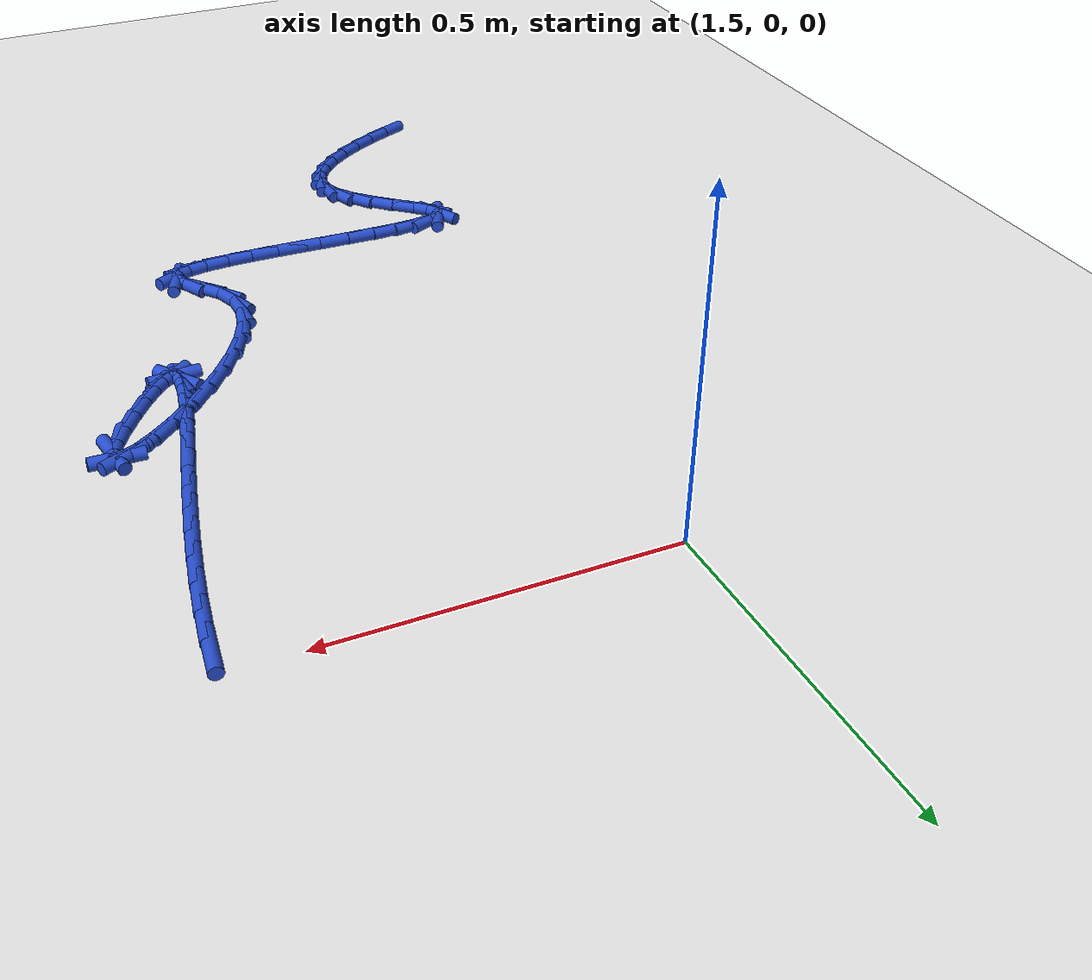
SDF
<sdf version="1.6">
 <world name="default">
  <model name="ground_plane">
   <static>1</static>
   <link name="link">
    <collision name="collision">
     <geometry><plane><normal>0 0 1</normal><size>100 100</size></plane></geometry>
     <surface><friction><ode><mu>100</mu><mu2>50</mu2></ode></friction></surface>
    </collision>
    <visual name="visual">
     <cast_shadows>0</cast_shadows>
     <geometry><plane><normal>0 0 1</normal><size>100 100</size></plane></geometry>
     <material>
      <script><uri>file://media/materials/scripts/gazebo.material</uri><name>Gazebo/WhiteGlow</name></script>
     </material>
    </visual>
   </link>
  </model>
  <model name="line">
   <link name="link_140">
    <pose>2.101556931160824 -0.03415369029280646 0.01 0 1.57 1.4442022148812341</pose>
    <collision name="collision">
     <geometry><cylinder><radius>0.01</radius><length>0.08</length></cylinder></geometry>
    </collision>
    <visual name="visual">
     <material>
      <script><name>Gazebo/Blue</name><uri>file://media/materials/scripts/gazebo.material</uri></script>
     </material>
     <geometry><cylinder><radius>0.01</radius><length>0.08</length></cylinder></geometry>
    </visual>
   </link>
   <link name="link_141">
    <pose>2.0950436342008474 -0.08532878405042327 0.01 0 1.57 1.413891093103514</pose>
    <collision name="collision">
     <geometry><cylinder><radius>0.01</radius><length>0.08</length></cylinder></geometry>
    </collision>
    <visual name="visual">
     <material>
      <script><name>Gazebo/Blue</name><uri>file://media/materials/scripts/gazebo.material</uri></script>
     </material>
     <geometry><cylinder><radius>0.01</radius><length>0.08</length></cylinder></geometry>
    </visual>
   </link>
   <link name="link_142">
    <pose>2.086908642193002 -0.1367491404618664 0.01 0 1.57 1.388809079891125</pose>
    <collision name="collision">
     <geometry><cylinder><radius>0.01</radius><length>0.08</length></cylinder></geometry>
    </collision>
    <visual name="visual">
     <material>
      <script><name>Gazebo/Blue</name><uri>file://media/materials/scripts/gazebo.material</uri></script>
     </material>
     <geometry><cylinder><radius>0.01</radius><length>0.08</length></cylinder></geometry>
    </visual>
   </link>
   <link name="link_143">
    <pose>2.077486708128805 -0.1879488134985408 0.01 0 1.57 1.3682377512382455</pose>
    <collision name="collision">
     <geometry><cylinder><radius>0.01</radius><length>0.08</length></cylinder></geometry>
    </collision>
    <visual name="visual">
     <material>
      <script><name>Gazebo/Blue</name><uri>file://media/materials/scripts/gazebo.material</uri></script>
     </material>
     <geometry><cylinder><radius>0.01</radius><length>0.08</length></cylinder></geometry>
    </visual>
   </link>
   <link name="link_144">
    <pose>2.067112584999769 -0.23846185713185147 0.01 0 1.57 1.3516917642343282</pose>
    <collision name="collision">
     <geometry><cylinder><radius>0.01</radius><length>0.08</length></cylinder></geometry>
    </collision>
    <visual name="visual">
     <material>
      <script><name>Gazebo/Blue</name><uri>file://media/materials/scripts/gazebo.material</uri></script>
     </material>
     <geometry><cylinder><radius>0.01</radius><length>0.08</length></cylinder></geometry>
    </visual>
   </link>
   <link name="link_145">
    <pose>2.0561210257974105 -0.2878223253332034 0.01 0 1.57 1.338895196707275</pose>
    <collision name="collision">
     <geometry><cylinder><radius>0.01</radius><length>0.08</length></cylinder></geometry>
    </collision>
    <visual name="visual">
     <material>
      <script><name>Gazebo/Blue</name><uri>file://media/materials/scripts/gazebo.material</uri></script>
     </material>
     <geometry><cylinder><radius>0.01</radius><length>0.08</length></cylinder></geometry>
    </visual>
   </link>
   <link name="link_146">
    <pose>2.0448467835132433 -0.33556427207400286 0.01 0 1.57 1.3297835003313692</pose>
    <collision name="collision">
     <geometry><cylinder><radius>0.01</radius><length>0.08</length></cylinder></geometry>
    </collision>
    <visual name="visual">
     <material>
      <script><name>Gazebo/Blue</name><uri>file://media/materials/scripts/gazebo.material</uri></script>
     </material>
     <geometry><cylinder><radius>0.01</radius><length>0.08</length></cylinder></geometry>
    </visual>
   </link>
   <link name="link_147">
    <pose>2.0336246111387832 -0.38122175132565195 0.01 0 1.57 1.3245390026820258</pose>
    <collision name="collision">
     <geometry><cylinder><radius>0.01</radius><length>0.08</length></cylinder></geometry>
    </collision>
    <visual name="visual">
     <material>
      <script><name>Gazebo/Blue</name><uri>file://media/materials/scripts/gazebo.material</uri></script>
     </material>
     <geometry><cylinder><radius>0.01</radius><length>0.08</length></cylinder></geometry>
    </visual>
   </link>
   <link name="link_148">
    <pose>2.0227892616655443 -0.4243288170595569 0.01 0 1.57 1.3236801997399832</pose>
    <collision name="collision">
     <geometry><cylinder><radius>0.01</radius><length>0.08</length></cylinder></geometry>
    </collision>
    <visual name="visual">
     <material>
      <script><name>Gazebo/Blue</name><uri>file://media/materials/scripts/gazebo.material</uri></script>
     </material>
     <geometry><cylinder><radius>0.01</radius><length>0.08</length></cylinder></geometry>
    </visual>
   </link>
   <link name="link_149">
    <pose>2.0126754880850424 -0.4644195232471228 0.01 0 1.57 1.328252666108784</pose>
    <collision name="collision">
     <geometry><cylinder><radius>0.01</radius><length>0.08</length></cylinder></geometry>
    </collision>
    <visual name="visual">
     <material>
      <script><name>Gazebo/Blue</name><uri>file://media/materials/scripts/gazebo.material</uri></script>
     </material>
     <geometry><cylinder><radius>0.01</radius><length>0.08</length></cylinder></geometry>
    </visual>
   </link>
   <link name="link_150">
    <pose>2.003618043388792 -0.5010279238597548 0.01 0 1.57 1.3402389152158736</pose>
    <collision name="collision">
     <geometry><cylinder><radius>0.01</radius><length>0.08</length></cylinder></geometry>
    </collision>
    <visual name="visual">
     <material>
      <script><name>Gazebo/Blue</name><uri>file://media/materials/scripts/gazebo.material</uri></script>
     </material>
     <geometry><cylinder><radius>0.01</radius><length>0.08</length></cylinder></geometry>
    </visual>
   </link>
   <link name="link_151">
    <pose>1.9959516805683075 -0.5336880728688574 0.01 0 1.57 1.3635031111590354</pose>
    <collision name="collision">
     <geometry><cylinder><radius>0.01</radius><length>0.08</length></cylinder></geometry>
    </collision>
    <visual name="visual">
     <material>
      <script><name>Gazebo/Blue</name><uri>file://media/materials/scripts/gazebo.material</uri></script>
     </material>
     <geometry><cylinder><radius>0.01</radius><length>0.08</length></cylinder></geometry>
    </visual>
   </link>
   <link name="link_152">
    <pose>1.9900111526151043 -0.5619340242458359 0.01 0 1.57 1.4062457216849507</pose>
    <collision name="collision">
     <geometry><cylinder><radius>0.01</radius><length>0.08</length></cylinder></geometry>
    </collision>
    <visual name="visual">
     <material>
      <script><name>Gazebo/Blue</name><uri>file://media/materials/scripts/gazebo.material</uri></script>
     </material>
     <geometry><cylinder><radius>0.01</radius><length>0.08</length></cylinder></geometry>
    </visual>
   </link>
   <link name="link_153">
    <pose>1.9861312125206974 -0.5852998319620952 0.01 0 1.57 1.4885944936559077</pose>
    <collision name="collision">
     <geometry><cylinder><radius>0.01</radius><length>0.08</length></cylinder></geometry>
    </collision>
    <visual name="visual">
     <material>
      <script><name>Gazebo/Blue</name><uri>file://media/materials/scripts/gazebo.material</uri></script>
     </material>
     <geometry><cylinder><radius>0.01</radius><length>0.08</length></cylinder></geometry>
    </visual>
   </link>
   <link name="link_154">
    <pose>1.9846466132766016 -0.6033195499890401 0.01 0 1.57 -1.4691226573566265</pose>
    <collision name="collision">
     <geometry><cylinder><radius>0.01</radius><length>0.08</length></cylinder></geometry>
    </collision>
    <visual name="visual">
     <material>
      <script><name>Gazebo/Blue</name><uri>file://media/materials/scripts/gazebo.material</uri></script>
     </material>
     <geometry><cylinder><radius>0.01</radius><length>0.08</length></cylinder></geometry>
    </visual>
   </link>
   <link name="link_155">
    <pose>1.9858921078743315 -0.615527232298076 0.01 0 1.57 -0.9422392229340247</pose>
    <collision name="collision">
     <geometry><cylinder><radius>0.01</radius><length>0.08</length></cylinder></geometry>
    </collision>
    <visual name="visual">
     <material>
      <script><name>Gazebo/Blue</name><uri>file://media/materials/scripts/gazebo.material</uri></script>
     </material>
     <geometry><cylinder><radius>0.01</radius><length>0.08</length></cylinder></geometry>
    </visual>
   </link>
   <link name="link_156">
    <pose>1.990202449305403 -0.6214569328606071 0.01 0 1.57 0.10521744258739686</pose>
    <collision name="collision">
     <geometry><cylinder><radius>0.01</radius><length>0.08</length></cylinder></geometry>
    </collision>
    <visual name="visual">
     <material>
      <script><name>Gazebo/Blue</name><uri>file://media/materials/scripts/gazebo.material</uri></script>
     </material>
     <geometry><cylinder><radius>0.01</radius><length>0.08</length></cylinder></geometry>
    </visual>
   </link>
   <link name="link_157">
    <pose>1.9979123905613294 -0.6206427056480386 0.01 0 1.57 0.6114935065382964</pose>
    <collision name="collision">
     <geometry><cylinder><radius>0.01</radius><length>0.08</length></cylinder></geometry>
    </collision>
    <visual name="visual">
     <material>
      <script><name>Gazebo/Blue</name><uri>file://media/materials/scripts/gazebo.material</uri></script>
     </material>
     <geometry><cylinder><radius>0.01</radius><length>0.08</length></cylinder></geometry>
    </visual>
   </link>
   <link name="link_158">
    <pose>2.009356684633626 -0.6126186046317753 0.01 0 1.57 0.7913737771391216</pose>
    <collision name="collision">
     <geometry><cylinder><radius>0.01</radius><length>0.08</length></cylinder></geometry>
    </collision>
    <visual name="visual">
     <material>
      <script><name>Gazebo/Blue</name><uri>file://media/materials/scripts/gazebo.material</uri></script>
     </material>
     <geometry><cylinder><radius>0.01</radius><length>0.08</length></cylinder></geometry>
    </visual>
   </link>
   <link name="link_159">
    <pose>2.0248700845138092 -0.5969186837832227 0.01 0 1.57 0.8747386738789843</pose>
    <collision name="collision">
     <geometry><cylinder><radius>0.01</radius><length>0.08</length></cylinder></geometry>
    </collision>
    <visual name="visual">
     <material>
      <script><name>Gazebo/Blue</name><uri>file://media/materials/scripts/gazebo.material</uri></script>
     </material>
     <geometry><cylinder><radius>0.01</radius><length>0.08</length></cylinder></geometry>
    </visual>
   </link>
   <link name="link_160">
    <pose>2.044685511510344 -0.5732038619779458 0.01 0 1.57 0.9236229548124099</pose>
    <collision name="collision">
     <geometry><cylinder><radius>0.01</radius><length>0.08</length></cylinder></geometry>
    </collision>
    <visual name="visual">
     <material>
      <script><name>Gazebo/Blue</name><uri>file://media/materials/scripts/gazebo.material</uri></script>
     </material>
     <geometry><cylinder><radius>0.01</radius><length>0.08</length></cylinder></geometry>
    </visual>
   </link>
   <link name="link_161">
    <pose>2.067081455207502 -0.5435699465855052 0.01 0 1.57 0.9684983171767285</pose>
    <collision name="collision">
     <geometry><cylinder><radius>0.01</radius><length>0.08</length></cylinder></geometry>
    </collision>
    <visual name="visual">
     <material>
      <script><name>Gazebo/Blue</name><uri>file://media/materials/scripts/gazebo.material</uri></script>
     </material>
     <geometry><cylinder><radius>0.01</radius><length>0.08</length></cylinder></geometry>
    </visual>
   </link>
   <link name="link_162">
    <pose>2.088575802474757 -0.5123061555917964 0.01 0 1.57 1.0321294461101762</pose>
    <collision name="collision">
     <geometry><cylinder><radius>0.01</radius><length>0.08</length></cylinder></geometry>
    </collision>
    <visual name="visual">
     <material>
      <script><name>Gazebo/Blue</name><uri>file://media/materials/scripts/gazebo.material</uri></script>
     </material>
     <geometry><cylinder><radius>0.01</radius><length>0.08</length></cylinder></geometry>
    </visual>
   </link>
   <link name="link_163">
    <pose>2.105623506910559 -0.48378011110172897 0.01 0 1.57 1.1708161806827466</pose>
    <collision name="collision">
     <geometry><cylinder><radius>0.01</radius><length>0.08</length></cylinder></geometry>
    </collision>
    <visual name="visual">
     <material>
      <script><name>Gazebo/Blue</name><uri>file://media/materials/scripts/gazebo.material</uri></script>
     </material>
     <geometry><cylinder><radius>0.01</radius><length>0.08</length></cylinder></geometry>
    </visual>
   </link>
   <link name="link_164">
    <pose>2.1146795221133567 -0.46235943522021195 0.01 0 1.57 -1.4182391712859814</pose>
    <collision name="collision">
     <geometry><cylinder><radius>0.01</radius><length>0.08</length></cylinder></geometry>
    </collision>
    <visual name="visual">
     <material>
      <script><name>Gazebo/Blue</name><uri>file://media/materials/scripts/gazebo.material</uri></script>
     </material>
     <geometry><cylinder><radius>0.01</radius><length>0.08</length></cylinder></geometry>
    </visual>
   </link>
   <link name="link_165">
    <pose>2.1130197199757275 -0.4515641005953644 0.01 0 1.57 -0.029694432622559722</pose>
    <collision name="collision">
     <geometry><cylinder><radius>0.01</radius><length>0.08</length></cylinder></geometry>
    </collision>
    <visual name="visual">
     <material>
      <script><name>Gazebo/Blue</name><uri>file://media/materials/scripts/gazebo.material</uri></script>
     </material>
     <geometry><cylinder><radius>0.01</radius><length>0.08</length></cylinder></geometry>
    </visual>
   </link>
   <link name="link_166">
    <pose>2.1014958099937258 -0.45122180401320594 0.01 0 1.57 0.42836812363266424</pose>
    <collision name="collision">
     <geometry><cylinder><radius>0.01</radius><length>0.08</length></cylinder></geometry>
    </collision>
    <visual name="visual">
     <material>
      <script><name>Gazebo/Blue</name><uri>file://media/materials/scripts/gazebo.material</uri></script>
     </material>
     <geometry><cylinder><radius>0.01</radius><length>0.08</length></cylinder></geometry>
    </visual>
   </link>
   <link name="link_167">
    <pose>2.0819328859872517 -0.46015516209616614 0.01 0 1.57 0.5838836967400234</pose>
    <collision name="collision">
     <geometry><cylinder><radius>0.01</radius><length>0.08</length></cylinder></geometry>
    </collision>
    <visual name="visual">
     <material>
      <script><name>Gazebo/Blue</name><uri>file://media/materials/scripts/gazebo.material</uri></script>
     </material>
     <geometry><cylinder><radius>0.01</radius><length>0.08</length></cylinder></geometry>
    </visual>
   </link>
   <link name="link_168">
    <pose>2.0561560622757282 -0.4771867702996357 0.01 0 1.57 0.6710912045367439</pose>
    <collision name="collision">
     <geometry><cylinder><radius>0.01</radius><length>0.08</length></cylinder></geometry>
    </collision>
    <visual name="visual">
     <material>
      <script><name>Gazebo/Blue</name><uri>file://media/materials/scripts/gazebo.material</uri></script>
     </material>
     <geometry><cylinder><radius>0.01</radius><length>0.08</length></cylinder></geometry>
    </visual>
   </link>
   <link name="link_169">
    <pose>2.0259904531785766 -0.5011392240790049 0.01 0 1.57 0.7368440145548399</pose>
    <collision name="collision">
     <geometry><cylinder><radius>0.01</radius><length>0.08</length></cylinder></geometry>
    </collision>
    <visual name="visual">
     <material>
      <script><name>Gazebo/Blue</name><uri>file://media/materials/scripts/gazebo.material</uri></script>
     </material>
     <geometry><cylinder><radius>0.01</radius><length>0.08</length></cylinder></geometry>
    </visual>
   </link>
   <link name="link_170">
    <pose>1.9932611730152208 -0.5308351188896644 0.01 0 1.57 0.7971220777866695</pose>
    <collision name="collision">
     <geometry><cylinder><radius>0.01</radius><length>0.08</length></cylinder></geometry>
    </collision>
    <visual name="visual">
     <material>
      <script><name>Gazebo/Blue</name><uri>file://media/materials/scripts/gazebo.material</uri></script>
     </material>
     <geometry><cylinder><radius>0.01</radius><length>0.08</length></cylinder></geometry>
    </visual>
   </link>
   <link name="link_171">
    <pose>1.959793336105083 -0.5650970501870043 0.01 0 1.57 0.8604979148240864</pose>
    <collision name="collision">
     <geometry><cylinder><radius>0.01</radius><length>0.08</length></cylinder></geometry>
    </collision>
    <visual name="visual">
     <material>
      <script><name>Gazebo/Blue</name><uri>file://media/materials/scripts/gazebo.material</uri></script>
     </material>
     <geometry><cylinder><radius>0.01</radius><length>0.08</length></cylinder></geometry>
    </visual>
   </link>
   <link name="link_172">
    <pose>1.9274120567675865 -0.6027476134264156 0.01 0 1.57 0.9341819395168988</pose>
    <collision name="collision">
     <geometry><cylinder><radius>0.01</radius><length>0.08</length></cylinder></geometry>
    </collision>
    <visual name="visual">
     <material>
      <script><name>Gazebo/Blue</name><uri>file://media/materials/scripts/gazebo.material</uri></script>
     </material>
     <geometry><cylinder><radius>0.01</radius><length>0.08</length></cylinder></geometry>
    </visual>
   </link>
   <link name="link_173">
    <pose>1.8979424493221528 -0.6426094040632896 0.01 0 1.57 1.026870030704418</pose>
    <collision name="collision">
     <geometry><cylinder><radius>0.01</radius><length>0.08</length></cylinder></geometry>
    </collision>
    <visual name="visual">
     <material>
      <script><name>Gazebo/Blue</name><uri>file://media/materials/scripts/gazebo.material</uri></script>
     </material>
     <geometry><cylinder><radius>0.01</radius><length>0.08</length></cylinder></geometry>
    </visual>
   </link>
   <link name="link_174">
    <pose>1.8732096280882065 -0.6835050175530144 0.01 0 1.57 1.1513655880613785</pose>
    <collision name="collision">
     <geometry><cylinder><radius>0.01</radius><length>0.08</length></cylinder></geometry>
    </collision>
    <visual name="visual">
     <material>
      <script><name>Gazebo/Blue</name><uri>file://media/materials/scripts/gazebo.material</uri></script>
     </material>
     <geometry><cylinder><radius>0.01</radius><length>0.08</length></cylinder></geometry>
    </visual>
   </link>
   <link name="link_175">
    <pose>1.855038707385169 -0.7242570493509819 0.01 0 1.57 1.3275812910118894</pose>
    <collision name="collision">
     <geometry><cylinder><radius>0.01</radius><length>0.08</length></cylinder></geometry>
    </collision>
    <visual name="visual">
     <material>
      <script><name>Gazebo/Blue</name><uri>file://media/materials/scripts/gazebo.material</uri></script>
     </material>
     <geometry><cylinder><radius>0.01</radius><length>0.08</length></cylinder></geometry>
    </visual>
   </link>
   <link name="link_176">
    <pose>1.8452548015324641 -0.7636880949125824 0.01 0 1.57 -1.5592021391736457</pose>
    <collision name="collision">
     <geometry><cylinder><radius>0.01</radius><length>0.08</length></cylinder></geometry>
    </collision>
    <visual name="visual">
     <material>
      <script><name>Gazebo/Blue</name><uri>file://media/materials/scripts/gazebo.material</uri></script>
     </material>
     <geometry><cylinder><radius>0.01</radius><length>0.08</length></cylinder></geometry>
    </visual>
   </link>
   <link name="link_177">
    <pose>1.8456830248495133 -0.8006207496932062 0.01 0 1.57 -1.2132381891023087</pose>
    <collision name="collision">
     <geometry><cylinder><radius>0.01</radius><length>0.08</length></cylinder></geometry>
    </collision>
    <visual name="visual">
     <material>
      <script><name>Gazebo/Blue</name><uri>file://media/materials/scripts/gazebo.material</uri></script>
     </material>
     <geometry><cylinder><radius>0.01</radius><length>0.08</length></cylinder></geometry>
    </visual>
   </link>
   <link name="link_178">
    <pose>1.8581093558710622 -0.8338802417222463 0.01 0 1.57 -0.9167328392878697</pose>
    <collision name="collision">
     <geometry><cylinder><radius>0.01</radius><length>0.08</length></cylinder></geometry>
    </collision>
    <visual name="visual">
     <material>
      <script><name>Gazebo/Blue</name><uri>file://media/materials/scripts/gazebo.material</uri></script>
     </material>
     <geometry><cylinder><radius>0.01</radius><length>0.08</length></cylinder></geometry>
    </visual>
   </link>
   <link name="link_179">
    <pose>1.8801078882656699 -0.862575122812988 0.01 0 1.57 -0.8417540047842131</pose>
    <collision name="collision">
     <geometry><cylinder><radius>0.01</radius><length>0.08</length></cylinder></geometry>
    </collision>
    <visual name="visual">
     <material>
      <script><name>Gazebo/Blue</name><uri>file://media/materials/scripts/gazebo.material</uri></script>
     </material>
     <geometry><cylinder><radius>0.01</radius><length>0.08</length></cylinder></geometry>
    </visual>
   </link>
   <link name="link_180">
    <pose>1.9013400880200824 -0.886346208999263 0.01 0 1.57 -1.090118114595109</pose>
    <collision name="collision">
     <geometry><cylinder><radius>0.01</radius><length>0.08</length></cylinder></geometry>
    </collision>
    <visual name="visual">
     <material>
      <script><name>Gazebo/Blue</name><uri>file://media/materials/scripts/gazebo.material</uri></script>
     </material>
     <geometry><cylinder><radius>0.01</radius><length>0.08</length></cylinder></geometry>
    </visual>
   </link>
   <link name="link_181">
    <pose>1.911028495459515 -0.9049251269537478 0.01 0 1.57 1.1834637412208244</pose>
    <collision name="collision">
     <geometry><cylinder><radius>0.01</radius><length>0.08</length></cylinder></geometry>
    </collision>
    <visual name="visual">
     <material>
      <script><name>Gazebo/Blue</name><uri>file://media/materials/scripts/gazebo.material</uri></script>
     </material>
     <geometry><cylinder><radius>0.01</radius><length>0.08</length></cylinder></geometry>
    </visual>
   </link>
   <link name="link_182">
    <pose>1.90546371949836 -0.9185662828946725 0.01 0 1.57 0.46343478395984355</pose>
    <collision name="collision">
     <geometry><cylinder><radius>0.01</radius><length>0.08</length></cylinder></geometry>
    </collision>
    <visual name="visual">
     <material>
      <script><name>Gazebo/Blue</name><uri>file://media/materials/scripts/gazebo.material</uri></script>
     </material>
     <geometry><cylinder><radius>0.01</radius><length>0.08</length></cylinder></geometry>
    </visual>
   </link>
   <link name="link_183">
    <pose>1.886687397034868 -0.9279494495683297 0.01 0 1.57 0.19291822989512564</pose>
    <collision name="collision">
     <geometry><cylinder><radius>0.01</radius><length>0.08</length></cylinder></geometry>
    </collision>
    <visual name="visual">
     <material>
      <script><name>Gazebo/Blue</name><uri>file://media/materials/scripts/gazebo.material</uri></script>
     </material>
     <geometry><cylinder><radius>0.01</radius><length>0.08</length></cylinder></geometry>
    </visual>
   </link>
   <link name="link_184">
    <pose>1.8569081752655112 -0.9337667523979428 0.01 0 1.57 0.07616297512590584</pose>
    <collision name="collision">
     <geometry><cylinder><radius>0.01</radius><length>0.08</length></cylinder></geometry>
    </collision>
    <visual name="visual">
     <material>
      <script><name>Gazebo/Blue</name><uri>file://media/materials/scripts/gazebo.material</uri></script>
     </material>
     <geometry><cylinder><radius>0.01</radius><length>0.08</length></cylinder></geometry>
    </visual>
   </link>
   <link name="link_185">
    <pose>1.8183347013867597 -0.9367103168067346 0.01 0 1.57 0.016871006640914493</pose>
    <collision name="collision">
     <geometry><cylinder><radius>0.01</radius><length>0.08</length></cylinder></geometry>
    </collision>
    <visual name="visual">
     <material>
      <script><name>Gazebo/Blue</name><uri>file://media/materials/scripts/gazebo.material</uri></script>
     </material>
     <geometry><cylinder><radius>0.01</radius><length>0.08</length></cylinder></geometry>
    </visual>
   </link>
   <link name="link_186">
    <pose>1.7731756225950843 -0.9374722682179281 0.01 0 1.57 -0.014685952074359713</pose>
    <collision name="collision">
     <geometry><cylinder><radius>0.01</radius><length>0.08</length></cylinder></geometry>
    </collision>
    <visual name="visual">
     <material>
      <script><name>Gazebo/Blue</name><uri>file://media/materials/scripts/gazebo.material</uri></script>
     </material>
     <geometry><cylinder><radius>0.01</radius><length>0.08</length></cylinder></geometry>
    </visual>
   </link>
   <link name="link_187">
    <pose>1.7236395860869551 -0.9367447320547458 0.01 0 1.57 -0.029484105405187373</pose>
    <collision name="collision">
     <geometry><cylinder><radius>0.01</radius><length>0.08</length></cylinder></geometry>
    </collision>
    <visual name="visual">
     <material>
      <script><name>Gazebo/Blue</name><uri>file://media/materials/scripts/gazebo.material</uri></script>
     </material>
     <geometry><cylinder><radius>0.01</radius><length>0.08</length></cylinder></geometry>
    </visual>
   </link>
   <link name="link_188">
    <pose>1.6719352390588436 -0.9352198337404114 0.01 0 1.57 -0.03154215834159134</pose>
    <collision name="collision">
     <geometry><cylinder><radius>0.01</radius><length>0.08</length></cylinder></geometry>
    </collision>
    <visual name="visual">
     <material>
      <script><name>Gazebo/Blue</name><uri>file://media/materials/scripts/gazebo.material</uri></script>
     </material>
     <geometry><cylinder><radius>0.01</radius><length>0.08</length></cylinder></geometry>
    </visual>
   </link>
   <link name="link_189">
    <pose>1.62027122870722 -0.9335896986981477 0.01 0 1.57 -0.02110878950089006</pose>
    <collision name="collision">
     <geometry><cylinder><radius>0.01</radius><length>0.08</length></cylinder></geometry>
    </collision>
    <visual name="visual">
     <material>
      <script><name>Gazebo/Blue</name><uri>file://media/materials/scripts/gazebo.material</uri></script>
     </material>
     <geometry><cylinder><radius>0.01</radius><length>0.08</length></cylinder></geometry>
    </visual>
   </link>
   <link name="link_190">
    <pose>1.570856202228554 -0.9325464523511774 0.01 0 1.57 0.005244200827530352</pose>
    <collision name="collision">
     <geometry><cylinder><radius>0.01</radius><length>0.08</length></cylinder></geometry>
    </collision>
    <visual name="visual">
     <material>
      <script><name>Gazebo/Blue</name><uri>file://media/materials/scripts/gazebo.material</uri></script>
     </material>
     <geometry><cylinder><radius>0.01</radius><length>0.08</length></cylinder></geometry>
    </visual>
   </link>
   <link name="link_191">
    <pose>1.5258988068193187 -0.9327822201227237 0.01 0 1.57 0.057571277866489134</pose>
    <collision name="collision">
     <geometry><cylinder><radius>0.01</radius><length>0.08</length></cylinder></geometry>
    </collision>
    <visual name="visual">
     <material>
      <script><name>Gazebo/Blue</name><uri>file://media/materials/scripts/gazebo.material</uri></script>
     </material>
     <geometry><cylinder><radius>0.01</radius><length>0.08</length></cylinder></geometry>
    </visual>
   </link>
   <link name="link_192">
    <pose>1.4876076896759836 -0.9349891274360094 0.01 0 1.57 0.1640726404879681</pose>
    <collision name="collision">
     <geometry><cylinder><radius>0.01</radius><length>0.08</length></cylinder></geometry>
    </collision>
    <visual name="visual">
     <material>
      <script><name>Gazebo/Blue</name><uri>file://media/materials/scripts/gazebo.material</uri></script>
     </material>
     <geometry><cylinder><radius>0.01</radius><length>0.08</length></cylinder></geometry>
    </visual>
   </link>
   <link name="link_193">
    <pose>1.4581914979950195 -0.9398592997142576 0.01 0 1.57 0.42175944714036107</pose>
    <collision name="collision">
     <geometry><cylinder><radius>0.01</radius><length>0.08</length></cylinder></geometry>
    </collision>
    <visual name="visual">
     <material>
      <script><name>Gazebo/Blue</name><uri>file://media/materials/scripts/gazebo.material</uri></script>
     </material>
     <geometry><cylinder><radius>0.01</radius><length>0.08</length></cylinder></geometry>
    </visual>
   </link>
   <link name="link_194">
    <pose>1.4398588789728968 -0.9480848623806916 0.01 0 1.57 1.1811107275054984</pose>
    <collision name="collision">
     <geometry><cylinder><radius>0.01</radius><length>0.08</length></cylinder></geometry>
    </collision>
    <visual name="visual">
     <material>
      <script><name>Gazebo/Blue</name><uri>file://media/materials/scripts/gazebo.material</uri></script>
     </material>
     <geometry><cylinder><radius>0.01</radius><length>0.08</length></cylinder></geometry>
    </visual>
   </link>
   <link name="link_195">
    <pose>1.4348184798060863 -0.9603579408585337 0.01 0 1.57 -1.0587466932552205</pose>
    <collision name="collision">
     <geometry><cylinder><radius>0.01</radius><length>0.08</length></cylinder></geometry>
    </collision>
    <visual name="visual">
     <material>
      <script><name>Gazebo/Blue</name><uri>file://media/materials/scripts/gazebo.material</uri></script>
     </material>
     <geometry><cylinder><radius>0.01</radius><length>0.08</length></cylinder></geometry>
    </visual>
   </link>
   <link name="link_196">
    <pose>1.4442469047367759 -0.9771329235905247 0.01 0 1.57 -0.7879963832541234</pose>
    <collision name="collision">
     <geometry><cylinder><radius>0.01</radius><length>0.08</length></cylinder></geometry>
    </collision>
    <visual name="visual">
     <material>
      <script><name>Gazebo/Blue</name><uri>file://media/materials/scripts/gazebo.material</uri></script>
     </material>
     <geometry><cylinder><radius>0.01</radius><length>0.08</length></cylinder></geometry>
    </visual>
   </link>
   <link name="link_197">
    <pose>1.4648383509442215 -0.9978316509883266 0.01 0 1.57 -0.7174978863243473</pose>
    <collision name="collision">
     <geometry><cylinder><radius>0.01</radius><length>0.08</length></cylinder></geometry>
    </collision>
    <visual name="visual">
     <material>
      <script><name>Gazebo/Blue</name><uri>file://media/materials/scripts/gazebo.material</uri></script>
     </material>
     <geometry><cylinder><radius>0.01</radius><length>0.08</length></cylinder></geometry>
    </visual>
   </link>
   <link name="link_198">
    <pose>1.4920703856708384 -1.0215957058189455 0.01 0 1.57 -0.7243904728843545</pose>
    <collision name="collision">
     <geometry><cylinder><radius>0.01</radius><length>0.08</length></cylinder></geometry>
    </collision>
    <visual name="visual">
     <material>
      <script><name>Gazebo/Blue</name><uri>file://media/materials/scripts/gazebo.material</uri></script>
     </material>
     <geometry><cylinder><radius>0.01</radius><length>0.08</length></cylinder></geometry>
    </visual>
   </link>
   <link name="link_199">
    <pose>1.5214205530060962 -1.0475666655159765 0.01 0 1.57 -0.7922827131437589</pose>
    <collision name="collision">
     <geometry><cylinder><radius>0.01</radius><length>0.08</length></cylinder></geometry>
    </collision>
    <visual name="visual">
     <material>
      <script><name>Gazebo/Blue</name><uri>file://media/materials/scripts/gazebo.material</uri></script>
     </material>
     <geometry><cylinder><radius>0.01</radius><length>0.08</length></cylinder></geometry>
    </visual>
   </link>
   <link name="link_200">
    <pose>1.548366397039462 -1.0748861075130125 0.01 0 1.57 -0.946821532413369</pose>
    <collision name="collision">
     <geometry><cylinder><radius>0.01</radius><length>0.08</length></cylinder></geometry>
    </collision>
    <visual name="visual">
     <material>
      <script><name>Gazebo/Blue</name><uri>file://media/materials/scripts/gazebo.material</uri></script>
     </material>
     <geometry><cylinder><radius>0.01</radius><length>0.08</length></cylinder></geometry>
    </visual>
   </link>
   <link name="link_201">
    <pose>1.5683873794585566 -1.102695857695518 0.01 0 1.57 -1.2268572209822783</pose>
    <collision name="collision">
     <geometry><cylinder><radius>0.01</radius><length>0.08</length></cylinder></geometry>
    </collision>
    <visual name="visual">
     <material>
      <script><name>Gazebo/Blue</name><uri>file://media/materials/scripts/gazebo.material</uri></script>
     </material>
     <geometry><cylinder><radius>0.01</radius><length>0.08</length></cylinder></geometry>
    </visual>
   </link>
   <link name="link_202">
    <pose>1.5782773763802471 -1.130308042865527 0.01 0 1.57 -1.5650379159893437</pose>
    <collision name="collision">
     <geometry><cylinder><radius>0.01</radius><length>0.08</length></cylinder></geometry>
    </collision>
    <visual name="visual">
     <material>
      <script><name>Gazebo/Blue</name><uri>file://media/materials/scripts/gazebo.material</uri></script>
     </material>
     <geometry><cylinder><radius>0.01</radius><length>0.08</length></cylinder></geometry>
    </visual>
   </link>
   <link name="link_203">
    <pose>1.5784339703647383 -1.1575017007906707 0.01 0 1.57 1.2595813138788534</pose>
    <collision name="collision">
     <geometry><cylinder><radius>0.01</radius><length>0.08</length></cylinder></geometry>
    </collision>
    <visual name="visual">
     <material>
      <script><name>Gazebo/Blue</name><uri>file://media/materials/scripts/gazebo.material</uri></script>
     </material>
     <geometry><cylinder><radius>0.01</radius><length>0.08</length></cylinder></geometry>
    </visual>
   </link>
   <link name="link_204">
    <pose>1.569866841605933 -1.1841351751148164 0.01 0 1.57 1.0101503452740561</pose>
    <collision name="collision">
     <geometry><cylinder><radius>0.01</radius><length>0.08</length></cylinder></geometry>
    </collision>
    <visual name="visual">
     <material>
      <script><name>Gazebo/Blue</name><uri>file://media/materials/scripts/gazebo.material</uri></script>
     </material>
     <geometry><cylinder><radius>0.01</radius><length>0.08</length></cylinder></geometry>
    </visual>
   </link>
   <link name="link_205">
    <pose>1.5535856702977318 -1.2100668094818305 0.01 0 1.57 0.8291074357602044</pose>
    <collision name="collision">
     <geometry><cylinder><radius>0.01</radius><length>0.08</length></cylinder></geometry>
    </collision>
    <visual name="visual">
     <material>
      <script><name>Gazebo/Blue</name><uri>file://media/materials/scripts/gazebo.material</uri></script>
     </material>
     <geometry><cylinder><radius>0.01</radius><length>0.08</length></cylinder></geometry>
    </visual>
   </link>
   <link name="link_206">
    <pose>1.5306001366340387 -1.2351549475355814 0.01 0 1.57 0.6988969975803331</pose>
    <collision name="collision">
     <geometry><cylinder><radius>0.01</radius><length>0.08</length></cylinder></geometry>
    </collision>
    <visual name="visual">
     <material>
      <script><name>Gazebo/Blue</name><uri>file://media/materials/scripts/gazebo.material</uri></script>
     </material>
     <geometry><cylinder><radius>0.01</radius><length>0.08</length></cylinder></geometry>
    </visual>
   </link>
   <link name="link_207">
    <pose>1.501919920808756 -1.2592579329199356 0.01 0 1.57 0.6030519534374926</pose>
    <collision name="collision">
     <geometry><cylinder><radius>0.01</radius><length>0.08</length></cylinder></geometry>
    </collision>
    <visual name="visual">
     <material>
      <script><name>Gazebo/Blue</name><uri>file://media/materials/scripts/gazebo.material</uri></script>
     </material>
     <geometry><cylinder><radius>0.01</radius><length>0.08</length></cylinder></geometry>
    </visual>
   </link>
   <link name="link_208">
    <pose>1.468554703015784 -1.2822341092787608 0.01 0 1.57 0.5301010599690196</pose>
    <collision name="collision">
     <geometry><cylinder><radius>0.01</radius><length>0.08</length></cylinder></geometry>
    </collision>
    <visual name="visual">
     <material>
      <script><name>Gazebo/Blue</name><uri>file://media/materials/scripts/gazebo.material</uri></script>
     </material>
     <geometry><cylinder><radius>0.01</radius><length>0.08</length></cylinder></geometry>
    </visual>
   </link>
   <link name="link_209">
    <pose>1.4315141634490278 -1.303941820255923 0.01 0 1.57 0.47256320632553594</pose>
    <collision name="collision">
     <geometry><cylinder><radius>0.01</radius><length>0.08</length></cylinder></geometry>
    </collision>
    <visual name="visual">
     <material>
      <script><name>Gazebo/Blue</name><uri>file://media/materials/scripts/gazebo.material</uri></script>
     </material>
     <geometry><cylinder><radius>0.01</radius><length>0.08</length></cylinder></geometry>
    </visual>
   </link>
   <link name="link_210">
    <pose>1.3918079823023883 -1.32423940949529 0.01 0 1.57 0.4255216504875131</pose>
    <collision name="collision">
     <geometry><cylinder><radius>0.01</radius><length>0.08</length></cylinder></geometry>
    </collision>
    <visual name="visual">
     <material>
      <script><name>Gazebo/Blue</name><uri>file://media/materials/scripts/gazebo.material</uri></script>
     </material>
     <geometry><cylinder><radius>0.01</radius><length>0.08</length></cylinder></geometry>
    </visual>
   </link>
  </model>
 </world>
</sdf>
